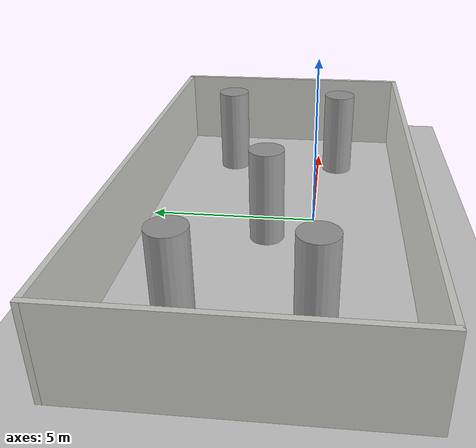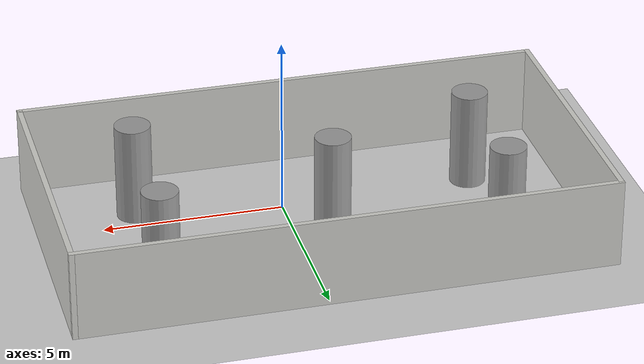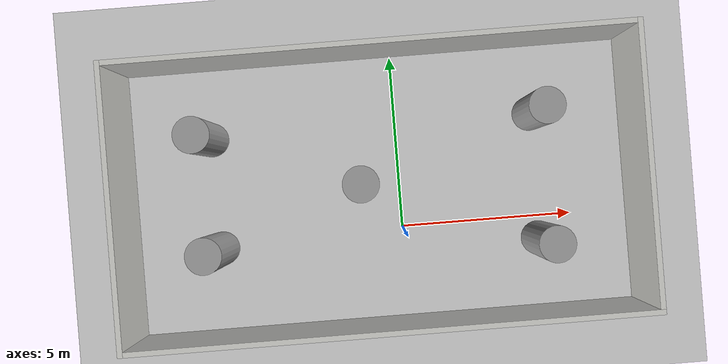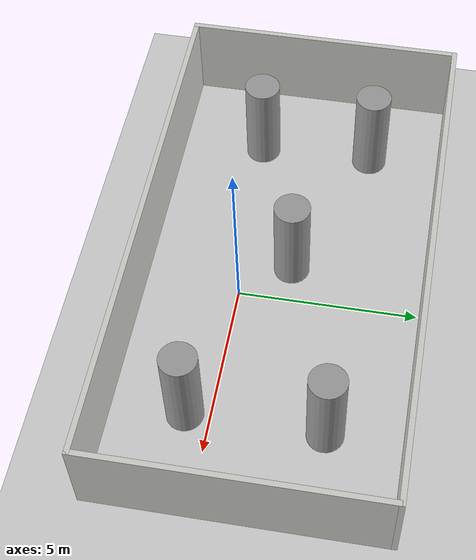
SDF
<sdf version="1.6">
 <world name="default">
  <light name="sun" type="directional">
   <pose>0 0 10 0 -0 0</pose>
   <diffuse>0.8 0.8 0.8 1</diffuse>
   <specular>0.2 0.2 0.2 1</specular>
   <attenuation>
    <range>1000</range>
    <constant>0.9</constant>
    <linear>0.01</linear>
    <quadratic>0.001</quadratic>
   </attenuation>
   <direction>-0.5 0.1 -0.9</direction>
  </light>
  <model name="ground_plane">
   <static>1</static>
   <link name="link">
    <collision name="collision">
     <geometry><plane><normal>0 0 1</normal><size>100 100</size></plane></geometry>
     <surface>
      <contact><collide_bitmask>65535</collide_bitmask></contact>
      <friction><ode><mu>100</mu><mu2>50</mu2></ode></friction>
     </surface>
    </collision>
    <visual name="visual">
     <cast_shadows>0</cast_shadows>
     <geometry><plane><normal>0 0 1</normal><size>100 100</size></plane></geometry>
     <material>
      <script><uri>file://media/materials/scripts/gazebo.material</uri><name>Gazebo/Grey</name></script>
     </material>
    </visual>
   </link>
  </model>
  <gravity>0 0 -9.8</gravity>
  <magnetic_field>6e-06 2.3e-05 -4.2e-05</magnetic_field>
  <atmosphere type="adiabatic"/>
  <physics name="default_physics" default="0" type="ode">
   <max_step_size>0.001</max_step_size>
   <real_time_factor>1</real_time_factor>
   <real_time_update_rate>1000</real_time_update_rate>
  </physics>
  <scene><ambient>0.4 0.4 0.4 1</ambient><background>0.7 0.7 0.7 1</background><shadows>1</shadows></scene>
  <audio><device>default</device></audio>
  <spherical_coordinates>
   <surface_model>EARTH_WGS84</surface_model>
   <latitude_deg>0</latitude_deg>
   <longitude_deg>0</longitude_deg>
   <elevation>0</elevation>
   <heading_deg>0</heading_deg>
  </spherical_coordinates>
  <model name="simple_rectangle">
   <pose>-0.573057 1.20253 0 0 -0 0</pose>
   <link name="Wall_24">
    <collision name="Wall_24_Collision">
     <geometry><box><size>8 0.15 2.5</size></box></geometry>
     <pose>0 0 1.25 0 -0 0</pose>
    </collision>
    <visual name="Wall_24_Visual">
     <pose>0 0 1.25 0 -0 0</pose>
     <geometry><box><size>8 0.15 2.5</size></box></geometry>
     <material>
      <script><uri>file://media/materials/scripts/gazebo.material</uri><name>Gazebo/CeilingTiled</name></script>
      <ambient>1 1 1 1</ambient>
     </material>
     <meta><layer>0</layer></meta>
    </visual>
    <pose>-7.3 0 0 0 -0 -1.5708</pose>
   </link>
   <link name="Wall_25">
    <collision name="Wall_25_Collision">
     <geometry><box><size>14.75 0.15 2.5</size></box></geometry>
     <pose>0 0 1.25 0 -0 0</pose>
    </collision>
    <visual name="Wall_25_Visual">
     <pose>0 0 1.25 0 -0 0</pose>
     <geometry><box><size>14.75 0.15 2.5</size></box></geometry>
     <material>
      <script><uri>file://media/materials/scripts/gazebo.material</uri><name>Gazebo/CeilingTiled</name></script>
      <ambient>1 1 1 1</ambient>
     </material>
     <meta><layer>0</layer></meta>
    </visual>
    <pose>0 -3.925 0 0 -0 0</pose>
   </link>
   <link name="Wall_26">
    <collision name="Wall_26_Collision">
     <geometry><box><size>8 0.15 2.5</size></box></geometry>
     <pose>0 0 1.25 0 -0 0</pose>
    </collision>
    <visual name="Wall_26_Visual">
     <pose>0 0 1.25 0 -0 0</pose>
     <geometry><box><size>8 0.15 2.5</size></box></geometry>
     <material>
      <script><uri>file://media/materials/scripts/gazebo.material</uri><name>Gazebo/CeilingTiled</name></script>
      <ambient>1 1 1 1</ambient>
     </material>
     <meta><layer>0</layer></meta>
    </visual>
    <pose>7.3 0 0 0 -0 1.5708</pose>
   </link>
   <link name="Wall_27">
    <collision name="Wall_27_Collision">
     <geometry><box><size>14.75 0.15 2.5</size></box></geometry>
     <pose>0 0 1.25 0 -0 0</pose>
    </collision>
    <visual name="Wall_27_Visual">
     <pose>0 0 1.25 0 -0 0</pose>
     <geometry><box><size>14.75 0.15 2.5</size></box></geometry>
     <material>
      <script><uri>file://media/materials/scripts/gazebo.material</uri><name>Gazebo/CeilingTiled</name></script>
      <ambient>1 1 1 1</ambient>
     </material>
     <meta><layer>0</layer></meta>
    </visual>
    <pose>0 3.925 0 0 -0 3.14159</pose>
   </link>
   <static>1</static>
  </model>
  <model name="unit_cylinder">
   <pose>4.0141 3.02887 1.37971 0 -0 -1.2e-05</pose>
   <link name="link">
    <inertial>
     <mass>1</mass>
     <inertia><ixx>0.145833</ixx><ixy>0</ixy><ixz>0</ixz><iyy>0.145833</iyy><iyz>0</iyz><izz>0.125</izz></inertia>
    </inertial>
    <collision name="collision">
     <geometry><cylinder><radius>0.5</radius><length>2.75943</length></cylinder></geometry>
    </collision>
    <visual name="visual">
     <geometry><cylinder><radius>0.5</radius><length>2.75943</length></cylinder></geometry>
     <material>
      <script><name>Gazebo/Grey</name><uri>file://media/materials/scripts/gazebo.material</uri></script>
     </material>
    </visual>
   </link>
  </model>
  <model name="unit_cylinder_clone">
   <pose>3.99666 -0.662776 1.37971 0 -0 -7e-06</pose>
   <link name="link">
    <inertial>
     <mass>1</mass>
     <inertia><ixx>0.145833</ixx><ixy>0</ixy><ixz>0</ixz><iyy>0.145833</iyy><iyz>0</iyz><izz>0.125</izz></inertia>
    </inertial>
    <collision name="collision">
     <geometry><cylinder><radius>0.5</radius><length>2.75943</length></cylinder></geometry>
    </collision>
    <visual name="visual">
     <geometry><cylinder><radius>0.5</radius><length>2.75943</length></cylinder></geometry>
     <material>
      <script><name>Gazebo/Grey</name><uri>file://media/materials/scripts/gazebo.material</uri></script>
     </material>
    </visual>
   </link>
  </model>
  <model name="unit_cylinder_clone_0">
   <pose>-1.0712 1.32914 1.37971 0 0 -7e-06</pose>
   <link name="link">
    <inertial>
     <mass>1</mass>
     <inertia><ixx>0.145833</ixx><ixy>0</ixy><ixz>0</ixz><iyy>0.145833</iyy><iyz>0</iyz><izz>0.125</izz></inertia>
    </inertial>
    <collision name="collision">
     <geometry><cylinder><radius>0.5</radius><length>2.75943</length></cylinder></geometry>
    </collision>
    <visual name="visual">
     <geometry><cylinder><radius>0.5</radius><length>2.75943</length></cylinder></geometry>
     <material>
      <script><name>Gazebo/Grey</name><uri>file://media/materials/scripts/gazebo.material</uri></script>
     </material>
    </visual>
   </link>
  </model>
  <model name="unit_cylinder_clone_0_clone">
   <pose>-5.38041 -0.243601 1.37971 0 -0 -7e-06</pose>
   <link name="link">
    <inertial>
     <mass>1</mass>
     <inertia><ixx>0.145833</ixx><ixy>0</ixy><ixz>0</ixz><iyy>0.145833</iyy><iyz>0</iyz><izz>0.125</izz></inertia>
    </inertial>
    <collision name="collision">
     <geometry><cylinder><radius>0.5</radius><length>2.75943</length></cylinder></geometry>
    </collision>
    <visual name="visual">
     <geometry><cylinder><radius>0.5</radius><length>2.75943</length></cylinder></geometry>
     <material>
      <script><name>Gazebo/Grey</name><uri>file://media/materials/scripts/gazebo.material</uri></script>
     </material>
    </visual>
   </link>
  </model>
  <model name="unit_cylinder_clone_0_clone_0">
   <pose>-5.45098 2.99099 1.37971 0 -0 -7e-06</pose>
   <link name="link">
    <inertial>
     <mass>1</mass>
     <inertia><ixx>0.145833</ixx><ixy>0</ixy><ixz>0</ixz><iyy>0.145833</iyy><iyz>0</iyz><izz>0.125</izz></inertia>
    </inertial>
    <collision name="collision">
     <geometry><cylinder><radius>0.5</radius><length>2.75943</length></cylinder></geometry>
    </collision>
    <visual name="visual">
     <geometry><cylinder><radius>0.5</radius><length>2.75943</length></cylinder></geometry>
     <material>
      <script><name>Gazebo/Grey</name><uri>file://media/materials/scripts/gazebo.material</uri></script>
     </material>
    </visual>
   </link>
  </model>
 </world>
</sdf>
